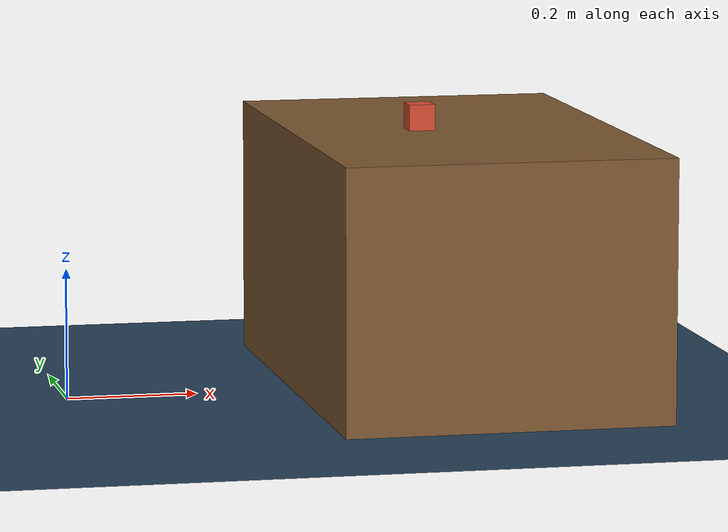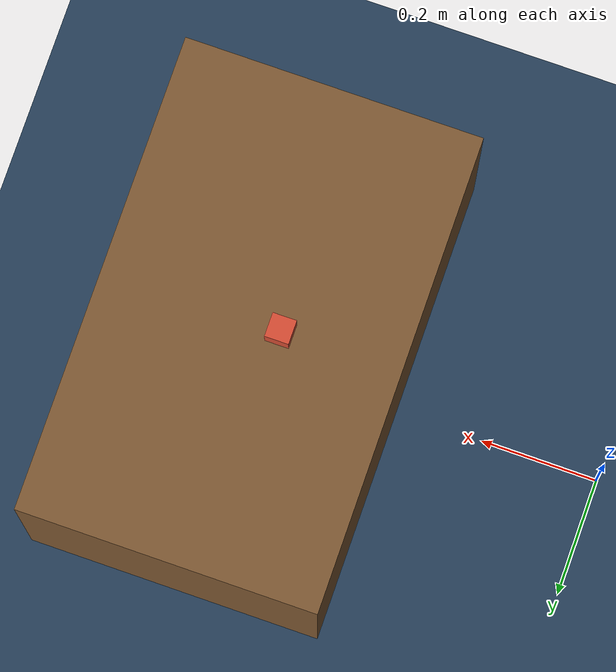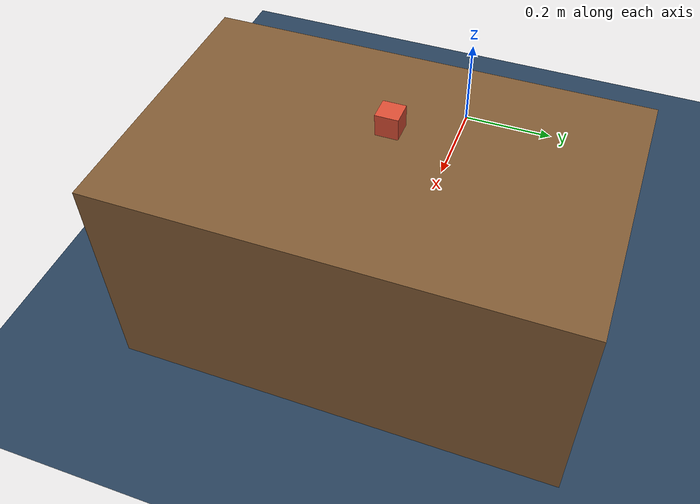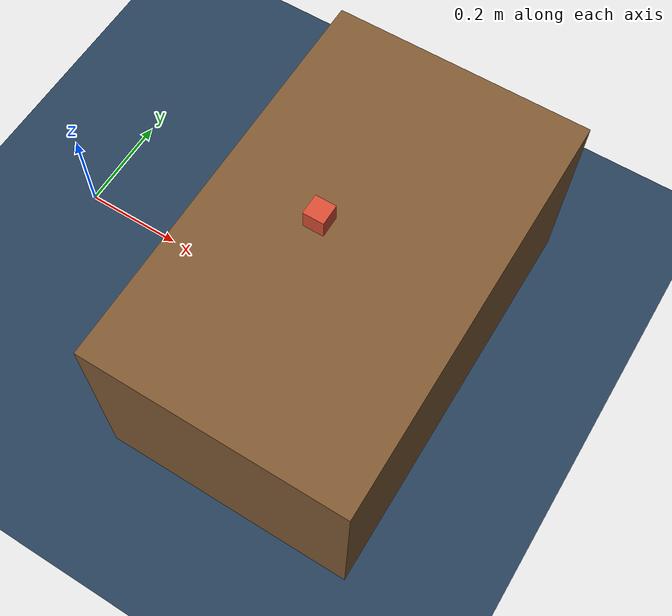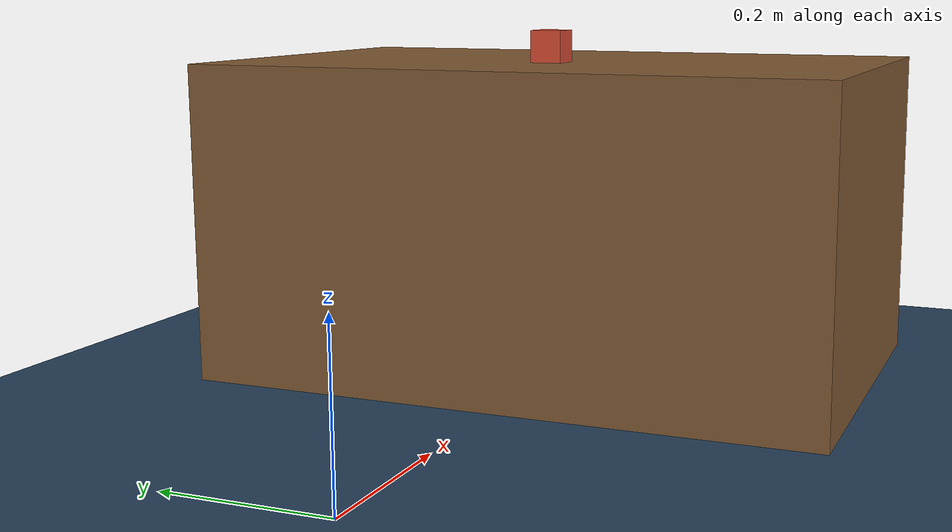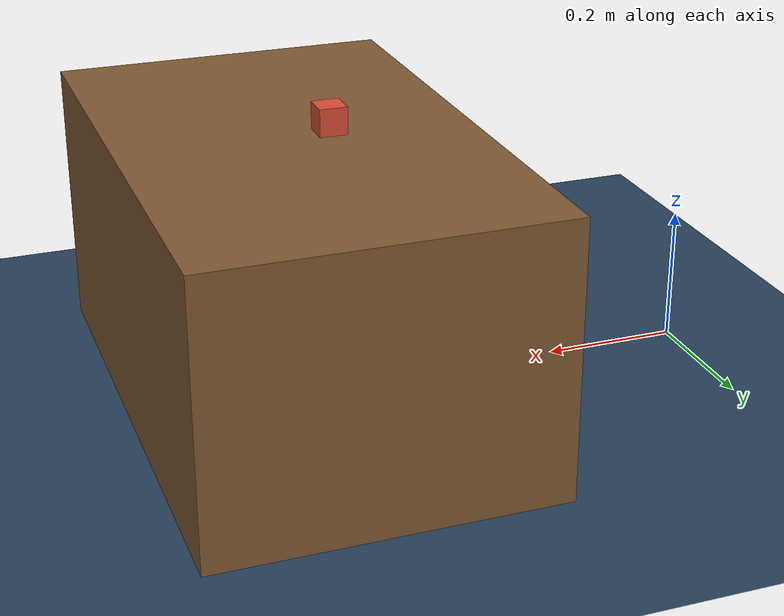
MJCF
<mujoco model="fr3_tabletop_scene">

  <statistic center="0.4 0 0.5" extent="1.2"/>

  <visual>
    <headlight diffuse="0.6 0.6 0.6" ambient="0.1 0.1 0.1" specular="0 0 0"/>
    <rgba haze="0.15 0.25 0.35 1"/>
    <global azimuth="120" elevation="-20"/>
  </visual>

  <asset>
    <texture type="skybox" builtin="gradient" rgb1="0.3 0.5 0.7" rgb2="0 0 0"
             width="512" height="3072"/>
    <texture type="2d" name="groundplane" builtin="checker" mark="edge"
             rgb1="0.2 0.3 0.4" rgb2="0.1 0.2 0.3" markrgb="0.8 0.8 0.8"
             width="300" height="300"/>
    <material name="groundplane" texture="groundplane" texuniform="true"
              texrepeat="5 5"/>
  </asset>

  <worldbody>
    <light pos="0 0 1.5" dir="0 0 -1" directional="true"/>
    <geom name="floor" type="plane" size="0 0 0.05" material="groundplane"/>

    <body name="table" pos="0.6 0 0.2">
      <geom name="table" type="box" size="0.25 0.4 0.2" rgba="0.5 0.35 0.2 1"/>
    </body>

    <!-- A cube on the tabletop for the robot to grasp. -->
    <body name="cube" pos="0.55 0 0.42">
      <freejoint/>
      <geom name="cube" type="box" size="0.02 0.02 0.02" mass="0.1"
            friction="1 0.005 0.0001" rgba="0.85 0.3 0.2 1"/>
    </body>
  </worldbody>

</mujoco>
